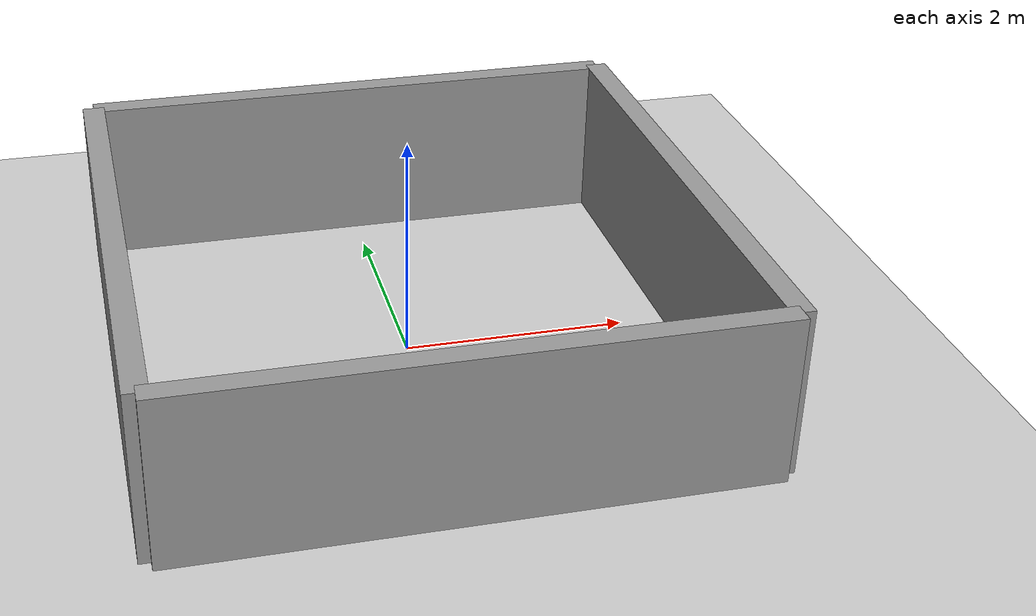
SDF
<?xml version="1.0" ?>
<sdf version="1.4">
	<world name="default">
		<include>
			<uri>model://ground_plane</uri>
		</include>
		<include>
			<uri>model://sun</uri>
		</include>
		<model name='closed_room'>
    <link name='Wall_1'>
      <collision name='Wall_1_Collision'>
        <geometry>
          <box>
            <size>5 0.2 1.5</size>
          </box>
        </geometry>
        <pose>0 0 0.75 0 -0 0</pose>
      </collision>
      <visual name='Wall_1_Visual'>
        <pose>0 0 0.75 0 -0 0</pose>
        <geometry>
          <box>
            <size>5 0.2 1.5</size>
          </box>
        </geometry>
        <material>
          <script>
            <uri>file://media/materials/scripts/gazebo.material</uri>
            <name>Gazebo/Grey</name>
          </script>
        </material>
      </visual>
      <velocity_decay>
        <linear>0</linear>
        <angular>0</angular>
      </velocity_decay>
      <pose>0 -2.5 0 0 0 0</pose>
    </link>
    <link name='Wall_2'>
      <collision name='Wall_2_Collision'>
        <geometry>
          <box>
            <size>5 0.2 1.5</size>
          </box>
        </geometry>
        <pose>0 0 0.75 0 -0 0</pose>
      </collision>
      <visual name='Wall_2_Visual'>
        <pose>0 0 0.75 0 -0 0</pose>
        <geometry>
          <box>
            <size>5 0.2 1.5</size>
          </box>
        </geometry>
        <material>
          <script>
            <uri>file://media/materials/scripts/gazebo.material</uri>
            <name>Gazebo/Grey</name>
          </script>
        </material>
      </visual>
      <velocity_decay>
        <linear>0</linear>
        <angular>0</angular>
      </velocity_decay>
      <pose>2.5 0 0 0 0 1.5708</pose>
    </link>
    <link name='Wall_3'>
      <collision name='Wall_3_Collision'>
        <geometry>
          <box>
            <size>5 0.2 1.5</size>
          </box>
        </geometry>
        <pose>0 0 0.75 0 -0 0</pose>
      </collision>
      <visual name='Wall_3_Visual'>
        <pose>0 0 0.75 0 -0 0</pose>
        <geometry>
          <box>
            <size>5 0.2 1.5</size>
          </box>
        </geometry>
        <material>
          <script>
            <uri>file://media/materials/scripts/gazebo.material</uri>
            <name>Gazebo/Grey</name>
          </script>
        </material>
      </visual>
      <velocity_decay>
        <linear>0</linear>
        <angular>0</angular>
      </velocity_decay>
      <pose>0 2.5 0 0 -0 -3.14159</pose>
    </link>
    <link name='Wall_4'>
      <collision name='Wall_4_Collision'>
        <geometry>
          <box>
            <size>5 0.2 1.5</size>
          </box>
        </geometry>
        <pose>0 0 0.75 0 -0 0</pose>
      </collision>
      <visual name='Wall_4_Visual'>
        <pose>0 0 0.75 0 -0 0</pose>
        <geometry>
          <box>
            <size>5 0.2 1.5</size>
          </box>
        </geometry>
        <material>
          <script>
            <uri>file://media/materials/scripts/gazebo.material</uri>
            <name>Gazebo/Grey</name>
          </script>
        </material>
      </visual>
      <velocity_decay>
        <linear>0</linear>
        <angular>0</angular>
      </velocity_decay>
      <pose>-2.5 0 0 0 0 -1.5708</pose>
    </link>
    <static>1</static>
  </model>
</world>
</sdf>
